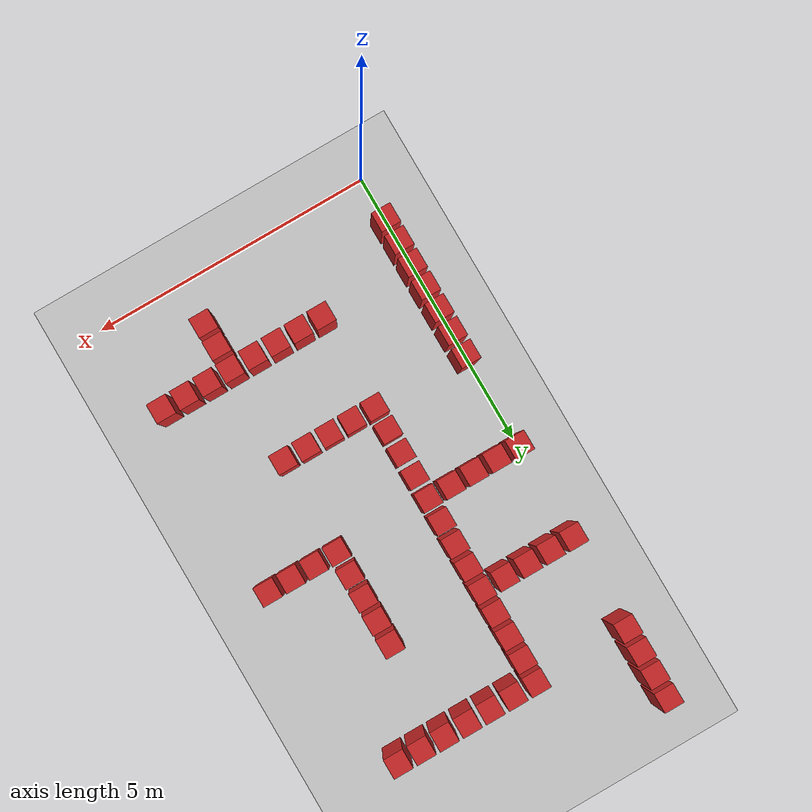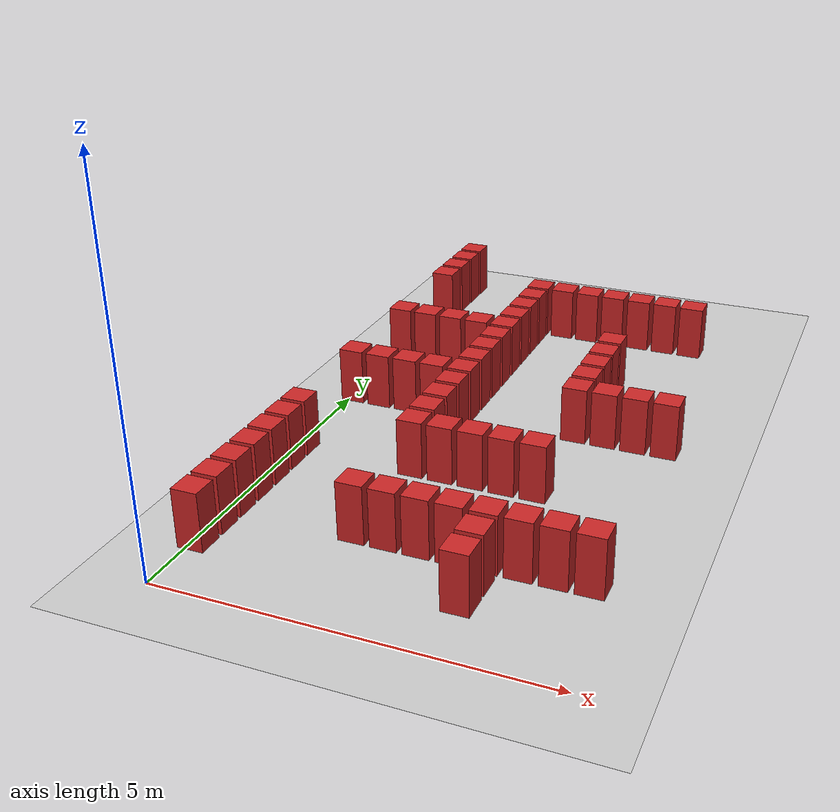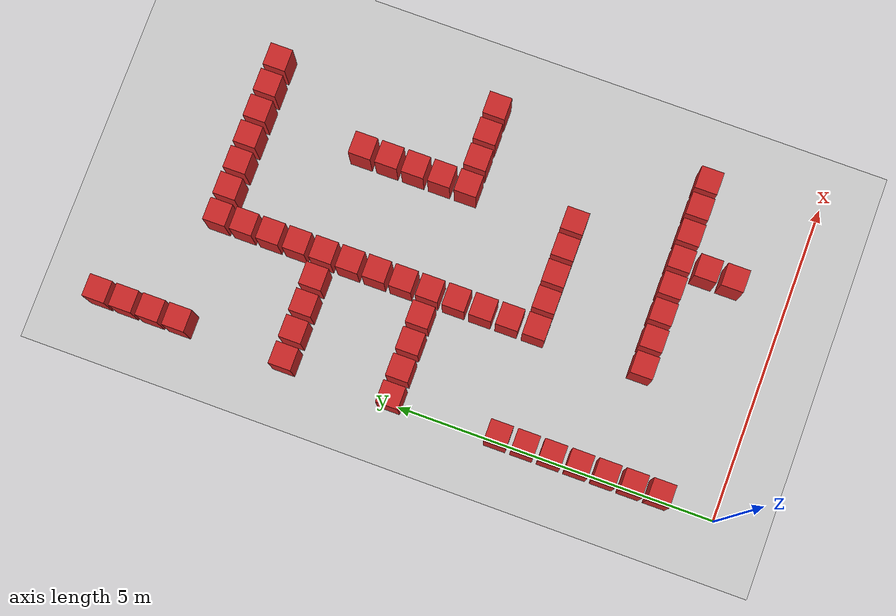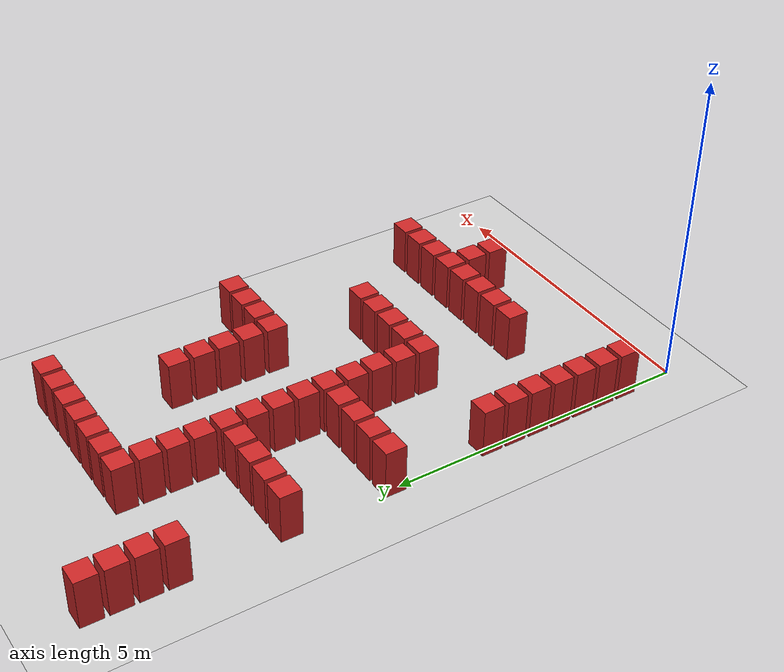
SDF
<sdf version="1.6">
 <world name="default">
  <model name="ground_plane">
   <static>1</static>
   <link name="link">
    <collision name="collision">
     <geometry><plane><normal>0 0 1</normal><size>100 100</size></plane></geometry>
     <surface><friction><ode><mu>100</mu><mu2>50</mu2></ode></friction></surface>
    </collision>
    <visual name="visual">
     <cast_shadows>0</cast_shadows>
     <geometry><plane><normal>0 0 1</normal><size>100 100</size></plane></geometry>
     <material>
      <script><uri>file://media/materials/scripts/gazebo.material</uri><name>Gazebo/Grey</name></script>
     </material>
    </visual>
   </link>
  </model>
  <model name="box_obstacle239">
   <static>0</static>
   <link name="link">
    <pose>0 0 0.1 0 -0 0</pose>
    <inertial>
     <mass>100</mass>
     <inertia>
      <ixx>0.166667</ixx>
      <ixy>0</ixy>
      <ixz>0</ixz>
      <iyy>0.166667</iyy>
      <iyz>0</iyz>
      <izz>0.166667</izz>
     </inertia>
    </inertial>
    <collision name="collision"><geometry><box><size>0.35 0.35 0.8</size></box></geometry></collision>
    <visual name="visual">
     <geometry><box><size>0.35 0.35 0.8</size></box></geometry>
     <material>
      <script><name>Gazebo/Red</name><uri>file://media/materials/scripts/gazebo.material</uri></script>
     </material>
    </visual>
   </link>
   <pose>0.079661 0.920061 0.300001 -1e-06 1.7e-05 0.000735</pose>
  </model>
  <model name="box_obstacle240">
   <static>0</static>
   <link name="link">
    <pose>0 0 0.1 0 -0 0</pose>
    <inertial>
     <mass>100</mass>
     <inertia>
      <ixx>0.166667</ixx>
      <ixy>0</ixy>
      <ixz>0</ixz>
      <iyy>0.166667</iyy>
      <iyz>0</iyz>
      <izz>0.166667</izz>
     </inertia>
    </inertial>
    <collision name="collision"><geometry><box><size>0.35 0.35 0.8</size></box></geometry></collision>
    <visual name="visual">
     <geometry><box><size>0.35 0.35 0.8</size></box></geometry>
     <material>
      <script><name>Gazebo/Red</name><uri>file://media/materials/scripts/gazebo.material</uri></script>
     </material>
    </visual>
   </link>
   <pose>0.079661 1.34006 0.300001 -1e-06 1.7e-05 0.000735</pose>
  </model>
  <model name="box_obstacle241">
   <static>0</static>
   <link name="link">
    <pose>0 0 0.1 0 -0 0</pose>
    <inertial>
     <mass>100</mass>
     <inertia>
      <ixx>0.166667</ixx>
      <ixy>0</ixy>
      <ixz>0</ixz>
      <iyy>0.166667</iyy>
      <iyz>0</iyz>
      <izz>0.166667</izz>
     </inertia>
    </inertial>
    <collision name="collision"><geometry><box><size>0.35 0.35 0.8</size></box></geometry></collision>
    <visual name="visual">
     <geometry><box><size>0.35 0.35 0.8</size></box></geometry>
     <material>
      <script><name>Gazebo/Red</name><uri>file://media/materials/scripts/gazebo.material</uri></script>
     </material>
    </visual>
   </link>
   <pose>0.079661 1.76006 0.300001 -1e-06 1.7e-05 0.000735</pose>
  </model>
  <model name="box_obstacle242">
   <static>0</static>
   <link name="link">
    <pose>0 0 0.1 0 -0 0</pose>
    <inertial>
     <mass>100</mass>
     <inertia>
      <ixx>0.166667</ixx>
      <ixy>0</ixy>
      <ixz>0</ixz>
      <iyy>0.166667</iyy>
      <iyz>0</iyz>
      <izz>0.166667</izz>
     </inertia>
    </inertial>
    <collision name="collision"><geometry><box><size>0.35 0.35 0.8</size></box></geometry></collision>
    <visual name="visual">
     <geometry><box><size>0.35 0.35 0.8</size></box></geometry>
     <material>
      <script><name>Gazebo/Red</name><uri>file://media/materials/scripts/gazebo.material</uri></script>
     </material>
    </visual>
   </link>
   <pose>0.079661 2.18006 0.300001 -1e-06 1.7e-05 0.000735</pose>
  </model>
  <model name="box_obstacle243">
   <static>0</static>
   <link name="link">
    <pose>0 0 0.1 0 -0 0</pose>
    <inertial>
     <mass>100</mass>
     <inertia>
      <ixx>0.166667</ixx>
      <ixy>0</ixy>
      <ixz>0</ixz>
      <iyy>0.166667</iyy>
      <iyz>0</iyz>
      <izz>0.166667</izz>
     </inertia>
    </inertial>
    <collision name="collision"><geometry><box><size>0.35 0.35 0.8</size></box></geometry></collision>
    <visual name="visual">
     <geometry><box><size>0.35 0.35 0.8</size></box></geometry>
     <material>
      <script><name>Gazebo/Red</name><uri>file://media/materials/scripts/gazebo.material</uri></script>
     </material>
    </visual>
   </link>
   <pose>0.079661 2.60006 0.300001 -1e-06 1.7e-05 0.000735</pose>
  </model>
  <model name="box_obstacle244">
   <static>0</static>
   <link name="link">
    <pose>0 0 0.1 0 -0 0</pose>
    <inertial>
     <mass>100</mass>
     <inertia>
      <ixx>0.166667</ixx>
      <ixy>0</ixy>
      <ixz>0</ixz>
      <iyy>0.166667</iyy>
      <iyz>0</iyz>
      <izz>0.166667</izz>
     </inertia>
    </inertial>
    <collision name="collision"><geometry><box><size>0.35 0.35 0.8</size></box></geometry></collision>
    <visual name="visual">
     <geometry><box><size>0.35 0.35 0.8</size></box></geometry>
     <material>
      <script><name>Gazebo/Red</name><uri>file://media/materials/scripts/gazebo.material</uri></script>
     </material>
    </visual>
   </link>
   <pose>0.079661 3.02006 0.300001 -1e-06 1.7e-05 0.000735</pose>
  </model>
  <model name="box_obstacle245">
   <static>0</static>
   <link name="link">
    <pose>0 0 0.1 0 -0 0</pose>
    <inertial>
     <mass>100</mass>
     <inertia>
      <ixx>0.166667</ixx>
      <ixy>0</ixy>
      <ixz>0</ixz>
      <iyy>0.166667</iyy>
      <iyz>0</iyz>
      <izz>0.166667</izz>
     </inertia>
    </inertial>
    <collision name="collision"><geometry><box><size>0.35 0.35 0.8</size></box></geometry></collision>
    <visual name="visual">
     <geometry><box><size>0.35 0.35 0.8</size></box></geometry>
     <material>
      <script><name>Gazebo/Red</name><uri>file://media/materials/scripts/gazebo.material</uri></script>
     </material>
    </visual>
   </link>
   <pose>0.079661 3.44006 0.300001 -1e-06 1.7e-05 0.000735</pose>
  </model>
  <model name="box_obstacle246">
   <static>0</static>
   <link name="link">
    <pose>0 0 0.1 0 -0 0</pose>
    <inertial>
     <mass>100</mass>
     <inertia>
      <ixx>0.166667</ixx>
      <ixy>0</ixy>
      <ixz>0</ixz>
      <iyy>0.166667</iyy>
      <iyz>0</iyz>
      <izz>0.166667</izz>
     </inertia>
    </inertial>
    <collision name="collision"><geometry><box><size>0.35 0.35 0.8</size></box></geometry></collision>
    <visual name="visual">
     <geometry><box><size>0.35 0.35 0.8</size></box></geometry>
     <material>
      <script><name>Gazebo/Red</name><uri>file://media/materials/scripts/gazebo.material</uri></script>
     </material>
    </visual>
   </link>
   <pose>0.079661 5.12006 0.300001 -1e-06 1.7e-05 0.000735</pose>
  </model>
  <model name="box_obstacle247">
   <static>0</static>
   <link name="link">
    <pose>0 0 0.1 0 -0 0</pose>
    <inertial>
     <mass>100</mass>
     <inertia>
      <ixx>0.166667</ixx>
      <ixy>0</ixy>
      <ixz>0</ixz>
      <iyy>0.166667</iyy>
      <iyz>0</iyz>
      <izz>0.166667</izz>
     </inertia>
    </inertial>
    <collision name="collision"><geometry><box><size>0.35 0.35 0.8</size></box></geometry></collision>
    <visual name="visual">
     <geometry><box><size>0.35 0.35 0.8</size></box></geometry>
     <material>
      <script><name>Gazebo/Red</name><uri>file://media/materials/scripts/gazebo.material</uri></script>
     </material>
    </visual>
   </link>
   <pose>0.079661 6.80006 0.300001 -1e-06 1.7e-05 0.000735</pose>
  </model>
  <model name="box_obstacle248">
   <static>0</static>
   <link name="link">
    <pose>0 0 0.1 0 -0 0</pose>
    <inertial>
     <mass>100</mass>
     <inertia>
      <ixx>0.166667</ixx>
      <ixy>0</ixy>
      <ixz>0</ixz>
      <iyy>0.166667</iyy>
      <iyz>0</iyz>
      <izz>0.166667</izz>
     </inertia>
    </inertial>
    <collision name="collision"><geometry><box><size>0.35 0.35 0.8</size></box></geometry></collision>
    <visual name="visual">
     <geometry><box><size>0.35 0.35 0.8</size></box></geometry>
     <material>
      <script><name>Gazebo/Red</name><uri>file://media/materials/scripts/gazebo.material</uri></script>
     </material>
    </visual>
   </link>
   <pose>0.079661 8.48006 0.300001 -1e-06 1.7e-05 0.000735</pose>
  </model>
  <model name="box_obstacle249">
   <static>0</static>
   <link name="link">
    <pose>0 0 0.1 0 -0 0</pose>
    <inertial>
     <mass>100</mass>
     <inertia>
      <ixx>0.166667</ixx>
      <ixy>0</ixy>
      <ixz>0</ixz>
      <iyy>0.166667</iyy>
      <iyz>0</iyz>
      <izz>0.166667</izz>
     </inertia>
    </inertial>
    <collision name="collision"><geometry><box><size>0.35 0.35 0.8</size></box></geometry></collision>
    <visual name="visual">
     <geometry><box><size>0.35 0.35 0.8</size></box></geometry>
     <material>
      <script><name>Gazebo/Red</name><uri>file://media/materials/scripts/gazebo.material</uri></script>
     </material>
    </visual>
   </link>
   <pose>0.079661 8.90006 0.300001 -1e-06 1.7e-05 0.000735</pose>
  </model>
  <model name="box_obstacle250">
   <static>0</static>
   <link name="link">
    <pose>0 0 0.1 0 -0 0</pose>
    <inertial>
     <mass>100</mass>
     <inertia>
      <ixx>0.166667</ixx>
      <ixy>0</ixy>
      <ixz>0</ixz>
      <iyy>0.166667</iyy>
      <iyz>0</iyz>
      <izz>0.166667</izz>
     </inertia>
    </inertial>
    <collision name="collision"><geometry><box><size>0.35 0.35 0.8</size></box></geometry></collision>
    <visual name="visual">
     <geometry><box><size>0.35 0.35 0.8</size></box></geometry>
     <material>
      <script><name>Gazebo/Red</name><uri>file://media/materials/scripts/gazebo.material</uri></script>
     </material>
    </visual>
   </link>
   <pose>0.079661 9.32006 0.300001 -1e-06 1.7e-05 0.000735</pose>
  </model>
  <model name="box_obstacle251">
   <static>0</static>
   <link name="link">
    <pose>0 0 0.1 0 -0 0</pose>
    <inertial>
     <mass>100</mass>
     <inertia>
      <ixx>0.166667</ixx>
      <ixy>0</ixy>
      <ixz>0</ixz>
      <iyy>0.166667</iyy>
      <iyz>0</iyz>
      <izz>0.166667</izz>
     </inertia>
    </inertial>
    <collision name="collision"><geometry><box><size>0.35 0.35 0.8</size></box></geometry></collision>
    <visual name="visual">
     <geometry><box><size>0.35 0.35 0.8</size></box></geometry>
     <material>
      <script><name>Gazebo/Red</name><uri>file://media/materials/scripts/gazebo.material</uri></script>
     </material>
    </visual>
   </link>
   <pose>0.079661 9.74006 0.300001 -1e-06 1.7e-05 0.000735</pose>
  </model>
  <model name="box_obstacle256">
   <static>0</static>
   <link name="link">
    <pose>0 0 0.1 0 -0 0</pose>
    <inertial>
     <mass>100</mass>
     <inertia>
      <ixx>0.166667</ixx>
      <ixy>0</ixy>
      <ixz>0</ixz>
      <iyy>0.166667</iyy>
      <iyz>0</iyz>
      <izz>0.166667</izz>
     </inertia>
    </inertial>
    <collision name="collision"><geometry><box><size>0.35 0.35 0.8</size></box></geometry></collision>
    <visual name="visual">
     <geometry><box><size>0.35 0.35 0.8</size></box></geometry>
     <material>
      <script><name>Gazebo/Red</name><uri>file://media/materials/scripts/gazebo.material</uri></script>
     </material>
    </visual>
   </link>
   <pose>0.499661 5.12006 0.300001 -1e-06 1.7e-05 0.000735</pose>
  </model>
  <model name="box_obstacle257">
   <static>0</static>
   <link name="link">
    <pose>0 0 0.1 0 -0 0</pose>
    <inertial>
     <mass>100</mass>
     <inertia>
      <ixx>0.166667</ixx>
      <ixy>0</ixy>
      <ixz>0</ixz>
      <iyy>0.166667</iyy>
      <iyz>0</iyz>
      <izz>0.166667</izz>
     </inertia>
    </inertial>
    <collision name="collision"><geometry><box><size>0.35 0.35 0.8</size></box></geometry></collision>
    <visual name="visual">
     <geometry><box><size>0.35 0.35 0.8</size></box></geometry>
     <material>
      <script><name>Gazebo/Red</name><uri>file://media/materials/scripts/gazebo.material</uri></script>
     </material>
    </visual>
   </link>
   <pose>0.499661 6.80006 0.300001 -1e-06 1.7e-05 0.000735</pose>
  </model>
  <model name="box_obstacle262">
   <static>0</static>
   <link name="link">
    <pose>0 0 0.1 0 -0 0</pose>
    <inertial>
     <mass>100</mass>
     <inertia>
      <ixx>0.166667</ixx>
      <ixy>0</ixy>
      <ixz>0</ixz>
      <iyy>0.166667</iyy>
      <iyz>0</iyz>
      <izz>0.166667</izz>
     </inertia>
    </inertial>
    <collision name="collision"><geometry><box><size>0.35 0.35 0.8</size></box></geometry></collision>
    <visual name="visual">
     <geometry><box><size>0.35 0.35 0.8</size></box></geometry>
     <material>
      <script><name>Gazebo/Red</name><uri>file://media/materials/scripts/gazebo.material</uri></script>
     </material>
    </visual>
   </link>
   <pose>0.919661 5.12006 0.300001 -1e-06 1.7e-05 0.000735</pose>
  </model>
  <model name="box_obstacle263">
   <static>0</static>
   <link name="link">
    <pose>0 0 0.1 0 -0 0</pose>
    <inertial>
     <mass>100</mass>
     <inertia>
      <ixx>0.166667</ixx>
      <ixy>0</ixy>
      <ixz>0</ixz>
      <iyy>0.166667</iyy>
      <iyz>0</iyz>
      <izz>0.166667</izz>
     </inertia>
    </inertial>
    <collision name="collision"><geometry><box><size>0.35 0.35 0.8</size></box></geometry></collision>
    <visual name="visual">
     <geometry><box><size>0.35 0.35 0.8</size></box></geometry>
     <material>
      <script><name>Gazebo/Red</name><uri>file://media/materials/scripts/gazebo.material</uri></script>
     </material>
    </visual>
   </link>
   <pose>0.919661 6.80006 0.300001 -1e-06 1.7e-05 0.000735</pose>
  </model>
  <model name="box_obstacle268">
   <static>0</static>
   <link name="link">
    <pose>0 0 0.1 0 -0 0</pose>
    <inertial>
     <mass>100</mass>
     <inertia>
      <ixx>0.166667</ixx>
      <ixy>0</ixy>
      <ixz>0</ixz>
      <iyy>0.166667</iyy>
      <iyz>0</iyz>
      <izz>0.166667</izz>
     </inertia>
    </inertial>
    <collision name="collision"><geometry><box><size>0.35 0.35 0.8</size></box></geometry></collision>
    <visual name="visual">
     <geometry><box><size>0.35 0.35 0.8</size></box></geometry>
     <material>
      <script><name>Gazebo/Red</name><uri>file://media/materials/scripts/gazebo.material</uri></script>
     </material>
    </visual>
   </link>
   <pose>1.33966 5.12006 0.300001 -1e-06 1.7e-05 0.000735</pose>
  </model>
  <model name="box_obstacle269">
   <static>0</static>
   <link name="link">
    <pose>0 0 0.1 0 -0 0</pose>
    <inertial>
     <mass>100</mass>
     <inertia>
      <ixx>0.166667</ixx>
      <ixy>0</ixy>
      <ixz>0</ixz>
      <iyy>0.166667</iyy>
      <iyz>0</iyz>
      <izz>0.166667</izz>
     </inertia>
    </inertial>
    <collision name="collision"><geometry><box><size>0.35 0.35 0.8</size></box></geometry></collision>
    <visual name="visual">
     <geometry><box><size>0.35 0.35 0.8</size></box></geometry>
     <material>
      <script><name>Gazebo/Red</name><uri>file://media/materials/scripts/gazebo.material</uri></script>
     </material>
    </visual>
   </link>
   <pose>1.33966 6.80006 0.300001 -1e-06 1.7e-05 0.000735</pose>
  </model>
  <model name="box_obstacle279">
   <static>0</static>
   <link name="link">
    <pose>0 0 0.1 0 -0 0</pose>
    <inertial>
     <mass>100</mass>
     <inertia>
      <ixx>0.166667</ixx>
      <ixy>0</ixy>
      <ixz>0</ixz>
      <iyy>0.166667</iyy>
      <iyz>0</iyz>
      <izz>0.166667</izz>
     </inertia>
    </inertial>
    <collision name="collision"><geometry><box><size>0.35 0.35 0.8</size></box></geometry></collision>
    <visual name="visual">
     <geometry><box><size>0.35 0.35 0.8</size></box></geometry>
     <material>
      <script><name>Gazebo/Red</name><uri>file://media/materials/scripts/gazebo.material</uri></script>
     </material>
    </visual>
   </link>
   <pose>1.75966 1.76006 0.300001 -1e-06 1.7e-05 0.000735</pose>
  </model>
  <model name="box_obstacle280">
   <static>0</static>
   <link name="link">
    <pose>0 0 0.1 0 -0 0</pose>
    <inertial>
     <mass>100</mass>
     <inertia>
      <ixx>0.166667</ixx>
      <ixy>0</ixy>
      <ixz>0</ixz>
      <iyy>0.166667</iyy>
      <iyz>0</iyz>
      <izz>0.166667</izz>
     </inertia>
    </inertial>
    <collision name="collision"><geometry><box><size>0.35 0.35 0.8</size></box></geometry></collision>
    <visual name="visual">
     <geometry><box><size>0.35 0.35 0.8</size></box></geometry>
     <material>
      <script><name>Gazebo/Red</name><uri>file://media/materials/scripts/gazebo.material</uri></script>
     </material>
    </visual>
   </link>
   <pose>1.75966 3.44006 0.300001 -1e-06 1.7e-05 0.000735</pose>
  </model>
  <model name="box_obstacle281">
   <static>0</static>
   <link name="link">
    <pose>0 0 0.1 0 -0 0</pose>
    <inertial>
     <mass>100</mass>
     <inertia>
      <ixx>0.166667</ixx>
      <ixy>0</ixy>
      <ixz>0</ixz>
      <iyy>0.166667</iyy>
      <iyz>0</iyz>
      <izz>0.166667</izz>
     </inertia>
    </inertial>
    <collision name="collision"><geometry><box><size>0.35 0.35 0.8</size></box></geometry></collision>
    <visual name="visual">
     <geometry><box><size>0.35 0.35 0.8</size></box></geometry>
     <material>
      <script><name>Gazebo/Red</name><uri>file://media/materials/scripts/gazebo.material</uri></script>
     </material>
    </visual>
   </link>
   <pose>1.75966 3.86006 0.300001 -1e-06 1.7e-05 0.000735</pose>
  </model>
  <model name="box_obstacle282">
   <static>0</static>
   <link name="link">
    <pose>0 0 0.1 0 -0 0</pose>
    <inertial>
     <mass>100</mass>
     <inertia>
      <ixx>0.166667</ixx>
      <ixy>0</ixy>
      <ixz>0</ixz>
      <iyy>0.166667</iyy>
      <iyz>0</iyz>
      <izz>0.166667</izz>
     </inertia>
    </inertial>
    <collision name="collision"><geometry><box><size>0.35 0.35 0.8</size></box></geometry></collision>
    <visual name="visual">
     <geometry><box><size>0.35 0.35 0.8</size></box></geometry>
     <material>
      <script><name>Gazebo/Red</name><uri>file://media/materials/scripts/gazebo.material</uri></script>
     </material>
    </visual>
   </link>
   <pose>1.75966 4.28006 0.300001 -1e-06 1.7e-05 0.000735</pose>
  </model>
  <model name="box_obstacle283">
   <static>0</static>
   <link name="link">
    <pose>0 0 0.1 0 -0 0</pose>
    <inertial>
     <mass>100</mass>
     <inertia>
      <ixx>0.166667</ixx>
      <ixy>0</ixy>
      <ixz>0</ixz>
      <iyy>0.166667</iyy>
      <iyz>0</iyz>
      <izz>0.166667</izz>
     </inertia>
    </inertial>
    <collision name="collision"><geometry><box><size>0.35 0.35 0.8</size></box></geometry></collision>
    <visual name="visual">
     <geometry><box><size>0.35 0.35 0.8</size></box></geometry>
     <material>
      <script><name>Gazebo/Red</name><uri>file://media/materials/scripts/gazebo.material</uri></script>
     </material>
    </visual>
   </link>
   <pose>1.75966 4.70006 0.300001 -1e-06 1.7e-05 0.000735</pose>
  </model>
  <model name="box_obstacle284">
   <static>0</static>
   <link name="link">
    <pose>0 0 0.1 0 -0 0</pose>
    <inertial>
     <mass>100</mass>
     <inertia>
      <ixx>0.166667</ixx>
      <ixy>0</ixy>
      <ixz>0</ixz>
      <iyy>0.166667</iyy>
      <iyz>0</iyz>
      <izz>0.166667</izz>
     </inertia>
    </inertial>
    <collision name="collision"><geometry><box><size>0.35 0.35 0.8</size></box></geometry></collision>
    <visual name="visual">
     <geometry><box><size>0.35 0.35 0.8</size></box></geometry>
     <material>
      <script><name>Gazebo/Red</name><uri>file://media/materials/scripts/gazebo.material</uri></script>
     </material>
    </visual>
   </link>
   <pose>1.75966 5.12006 0.300001 -1e-06 1.7e-05 0.000735</pose>
  </model>
  <model name="box_obstacle285">
   <static>0</static>
   <link name="link">
    <pose>0 0 0.1 0 -0 0</pose>
    <inertial>
     <mass>100</mass>
     <inertia>
      <ixx>0.166667</ixx>
      <ixy>0</ixy>
      <ixz>0</ixz>
      <iyy>0.166667</iyy>
      <iyz>0</iyz>
      <izz>0.166667</izz>
     </inertia>
    </inertial>
    <collision name="collision"><geometry><box><size>0.35 0.35 0.8</size></box></geometry></collision>
    <visual name="visual">
     <geometry><box><size>0.35 0.35 0.8</size></box></geometry>
     <material>
      <script><name>Gazebo/Red</name><uri>file://media/materials/scripts/gazebo.material</uri></script>
     </material>
    </visual>
   </link>
   <pose>1.75966 5.54006 0.300001 -1e-06 1.7e-05 0.000735</pose>
  </model>
  <model name="box_obstacle286">
   <static>0</static>
   <link name="link">
    <pose>0 0 0.1 0 -0 0</pose>
    <inertial>
     <mass>100</mass>
     <inertia>
      <ixx>0.166667</ixx>
      <ixy>0</ixy>
      <ixz>0</ixz>
      <iyy>0.166667</iyy>
      <iyz>0</iyz>
      <izz>0.166667</izz>
     </inertia>
    </inertial>
    <collision name="collision"><geometry><box><size>0.35 0.35 0.8</size></box></geometry></collision>
    <visual name="visual">
     <geometry><box><size>0.35 0.35 0.8</size></box></geometry>
     <material>
      <script><name>Gazebo/Red</name><uri>file://media/materials/scripts/gazebo.material</uri></script>
     </material>
    </visual>
   </link>
   <pose>1.75966 5.96006 0.300001 -1e-06 1.7e-05 0.000735</pose>
  </model>
  <model name="box_obstacle287">
   <static>0</static>
   <link name="link">
    <pose>0 0 0.1 0 -0 0</pose>
    <inertial>
     <mass>100</mass>
     <inertia>
      <ixx>0.166667</ixx>
      <ixy>0</ixy>
      <ixz>0</ixz>
      <iyy>0.166667</iyy>
      <iyz>0</iyz>
      <izz>0.166667</izz>
     </inertia>
    </inertial>
    <collision name="collision"><geometry><box><size>0.35 0.35 0.8</size></box></geometry></collision>
    <visual name="visual">
     <geometry><box><size>0.35 0.35 0.8</size></box></geometry>
     <material>
      <script><name>Gazebo/Red</name><uri>file://media/materials/scripts/gazebo.material</uri></script>
     </material>
    </visual>
   </link>
   <pose>1.75966 6.38006 0.300001 -1e-06 1.7e-05 0.000735</pose>
  </model>
  <model name="box_obstacle288">
   <static>0</static>
   <link name="link">
    <pose>0 0 0.1 0 -0 0</pose>
    <inertial>
     <mass>100</mass>
     <inertia>
      <ixx>0.166667</ixx>
      <ixy>0</ixy>
      <ixz>0</ixz>
      <iyy>0.166667</iyy>
      <iyz>0</iyz>
      <izz>0.166667</izz>
     </inertia>
    </inertial>
    <collision name="collision"><geometry><box><size>0.35 0.35 0.8</size></box></geometry></collision>
    <visual name="visual">
     <geometry><box><size>0.35 0.35 0.8</size></box></geometry>
     <material>
      <script><name>Gazebo/Red</name><uri>file://media/materials/scripts/gazebo.material</uri></script>
     </material>
    </visual>
   </link>
   <pose>1.75966 6.80006 0.300001 -1e-06 1.7e-05 0.000735</pose>
  </model>
  <model name="box_obstacle289">
   <static>0</static>
   <link name="link">
    <pose>0 0 0.1 0 -0 0</pose>
    <inertial>
     <mass>100</mass>
     <inertia>
      <ixx>0.166667</ixx>
      <ixy>0</ixy>
      <ixz>0</ixz>
      <iyy>0.166667</iyy>
      <iyz>0</iyz>
      <izz>0.166667</izz>
     </inertia>
    </inertial>
    <collision name="collision"><geometry><box><size>0.35 0.35 0.8</size></box></geometry></collision>
    <visual name="visual">
     <geometry><box><size>0.35 0.35 0.8</size></box></geometry>
     <material>
      <script><name>Gazebo/Red</name><uri>file://media/materials/scripts/gazebo.material</uri></script>
     </material>
    </visual>
   </link>
   <pose>1.75966 7.22006 0.300001 -1e-06 1.7e-05 0.000735</pose>
  </model>
  <model name="box_obstacle290">
   <static>0</static>
   <link name="link">
    <pose>0 0 0.1 0 -0 0</pose>
    <inertial>
     <mass>100</mass>
     <inertia>
      <ixx>0.166667</ixx>
      <ixy>0</ixy>
      <ixz>0</ixz>
      <iyy>0.166667</iyy>
      <iyz>0</iyz>
      <izz>0.166667</izz>
     </inertia>
    </inertial>
    <collision name="collision"><geometry><box><size>0.35 0.35 0.8</size></box></geometry></collision>
    <visual name="visual">
     <geometry><box><size>0.35 0.35 0.8</size></box></geometry>
     <material>
      <script><name>Gazebo/Red</name><uri>file://media/materials/scripts/gazebo.material</uri></script>
     </material>
    </visual>
   </link>
   <pose>1.75966 7.64006 0.300001 -1e-06 1.7e-05 0.000735</pose>
  </model>
  <model name="box_obstacle291">
   <static>0</static>
   <link name="link">
    <pose>0 0 0.1 0 -0 0</pose>
    <inertial>
     <mass>100</mass>
     <inertia>
      <ixx>0.166667</ixx>
      <ixy>0</ixy>
      <ixz>0</ixz>
      <iyy>0.166667</iyy>
      <iyz>0</iyz>
      <izz>0.166667</izz>
     </inertia>
    </inertial>
    <collision name="collision"><geometry><box><size>0.35 0.35 0.8</size></box></geometry></collision>
    <visual name="visual">
     <geometry><box><size>0.35 0.35 0.8</size></box></geometry>
     <material>
      <script><name>Gazebo/Red</name><uri>file://media/materials/scripts/gazebo.material</uri></script>
     </material>
    </visual>
   </link>
   <pose>1.75966 8.06006 0.300001 -1e-06 1.7e-05 0.000735</pose>
  </model>
  <model name="box_obstacle292">
   <static>0</static>
   <link name="link">
    <pose>0 0 0.1 0 -0 0</pose>
    <inertial>
     <mass>100</mass>
     <inertia>
      <ixx>0.166667</ixx>
      <ixy>0</ixy>
      <ixz>0</ixz>
      <iyy>0.166667</iyy>
      <iyz>0</iyz>
      <izz>0.166667</izz>
     </inertia>
    </inertial>
    <collision name="collision"><geometry><box><size>0.35 0.35 0.8</size></box></geometry></collision>
    <visual name="visual">
     <geometry><box><size>0.35 0.35 0.8</size></box></geometry>
     <material>
      <script><name>Gazebo/Red</name><uri>file://media/materials/scripts/gazebo.material</uri></script>
     </material>
    </visual>
   </link>
   <pose>1.75966 8.48006 0.300001 -1e-06 1.7e-05 0.000735</pose>
  </model>
  <model name="box_obstacle297">
   <static>0</static>
   <link name="link">
    <pose>0 0 0.1 0 -0 0</pose>
    <inertial>
     <mass>100</mass>
     <inertia>
      <ixx>0.166667</ixx>
      <ixy>0</ixy>
      <ixz>0</ixz>
      <iyy>0.166667</iyy>
      <iyz>0</iyz>
      <izz>0.166667</izz>
     </inertia>
    </inertial>
    <collision name="collision"><geometry><box><size>0.35 0.35 0.8</size></box></geometry></collision>
    <visual name="visual">
     <geometry><box><size>0.35 0.35 0.8</size></box></geometry>
     <material>
      <script><name>Gazebo/Red</name><uri>file://media/materials/scripts/gazebo.material</uri></script>
     </material>
    </visual>
   </link>
   <pose>2.17966 1.76006 0.300001 -1e-06 1.7e-05 0.000735</pose>
  </model>
  <model name="box_obstacle298">
   <static>0</static>
   <link name="link">
    <pose>0 0 0.1 0 -0 0</pose>
    <inertial>
     <mass>100</mass>
     <inertia>
      <ixx>0.166667</ixx>
      <ixy>0</ixy>
      <ixz>0</ixz>
      <iyy>0.166667</iyy>
      <iyz>0</iyz>
      <izz>0.166667</izz>
     </inertia>
    </inertial>
    <collision name="collision"><geometry><box><size>0.35 0.35 0.8</size></box></geometry></collision>
    <visual name="visual">
     <geometry><box><size>0.35 0.35 0.8</size></box></geometry>
     <material>
      <script><name>Gazebo/Red</name><uri>file://media/materials/scripts/gazebo.material</uri></script>
     </material>
    </visual>
   </link>
   <pose>2.17966 3.44006 0.300001 -1e-06 1.7e-05 0.000735</pose>
  </model>
  <model name="box_obstacle299">
   <static>0</static>
   <link name="link">
    <pose>0 0 0.1 0 -0 0</pose>
    <inertial>
     <mass>100</mass>
     <inertia>
      <ixx>0.166667</ixx>
      <ixy>0</ixy>
      <ixz>0</ixz>
      <iyy>0.166667</iyy>
      <iyz>0</iyz>
      <izz>0.166667</izz>
     </inertia>
    </inertial>
    <collision name="collision"><geometry><box><size>0.35 0.35 0.8</size></box></geometry></collision>
    <visual name="visual">
     <geometry><box><size>0.35 0.35 0.8</size></box></geometry>
     <material>
      <script><name>Gazebo/Red</name><uri>file://media/materials/scripts/gazebo.material</uri></script>
     </material>
    </visual>
   </link>
   <pose>2.17966 8.48006 0.300001 -1e-06 1.7e-05 0.000735</pose>
  </model>
  <model name="box_obstacle304">
   <static>0</static>
   <link name="link">
    <pose>0 0 0.1 0 -0 0</pose>
    <inertial>
     <mass>100</mass>
     <inertia>
      <ixx>0.166667</ixx>
      <ixy>0</ixy>
      <ixz>0</ixz>
      <iyy>0.166667</iyy>
      <iyz>0</iyz>
      <izz>0.166667</izz>
     </inertia>
    </inertial>
    <collision name="collision"><geometry><box><size>0.35 0.35 0.8</size></box></geometry></collision>
    <visual name="visual">
     <geometry><box><size>0.35 0.35 0.8</size></box></geometry>
     <material>
      <script><name>Gazebo/Red</name><uri>file://media/materials/scripts/gazebo.material</uri></script>
     </material>
    </visual>
   </link>
   <pose>2.59966 1.76006 0.300001 -1e-06 1.7e-05 0.000735</pose>
  </model>
  <model name="box_obstacle305">
   <static>0</static>
   <link name="link">
    <pose>0 0 0.1 0 -0 0</pose>
    <inertial>
     <mass>100</mass>
     <inertia>
      <ixx>0.166667</ixx>
      <ixy>0</ixy>
      <ixz>0</ixz>
      <iyy>0.166667</iyy>
      <iyz>0</iyz>
      <izz>0.166667</izz>
     </inertia>
    </inertial>
    <collision name="collision"><geometry><box><size>0.35 0.35 0.8</size></box></geometry></collision>
    <visual name="visual">
     <geometry><box><size>0.35 0.35 0.8</size></box></geometry>
     <material>
      <script><name>Gazebo/Red</name><uri>file://media/materials/scripts/gazebo.material</uri></script>
     </material>
    </visual>
   </link>
   <pose>2.59966 3.44006 0.300001 -1e-06 1.7e-05 0.000735</pose>
  </model>
  <model name="box_obstacle306">
   <static>0</static>
   <link name="link">
    <pose>0 0 0.1 0 -0 0</pose>
    <inertial>
     <mass>100</mass>
     <inertia>
      <ixx>0.166667</ixx>
      <ixy>0</ixy>
      <ixz>0</ixz>
      <iyy>0.166667</iyy>
      <iyz>0</iyz>
      <izz>0.166667</izz>
     </inertia>
    </inertial>
    <collision name="collision"><geometry><box><size>0.35 0.35 0.8</size></box></geometry></collision>
    <visual name="visual">
     <geometry><box><size>0.35 0.35 0.8</size></box></geometry>
     <material>
      <script><name>Gazebo/Red</name><uri>file://media/materials/scripts/gazebo.material</uri></script>
     </material>
    </visual>
   </link>
   <pose>2.59966 8.48006 0.300001 -1e-06 1.7e-05 0.000735</pose>
  </model>
  <model name="box_obstacle311">
   <static>0</static>
   <link name="link">
    <pose>0 0 0.1 0 -0 0</pose>
    <inertial>
     <mass>100</mass>
     <inertia>
      <ixx>0.166667</ixx>
      <ixy>0</ixy>
      <ixz>0</ixz>
      <iyy>0.166667</iyy>
      <iyz>0</iyz>
      <izz>0.166667</izz>
     </inertia>
    </inertial>
    <collision name="collision"><geometry><box><size>0.35 0.35 0.8</size></box></geometry></collision>
    <visual name="visual">
     <geometry><box><size>0.35 0.35 0.8</size></box></geometry>
     <material>
      <script><name>Gazebo/Red</name><uri>file://media/materials/scripts/gazebo.material</uri></script>
     </material>
    </visual>
   </link>
   <pose>3.01966 1.76006 0.300001 -1e-06 1.7e-05 0.000735</pose>
  </model>
  <model name="box_obstacle312">
   <static>0</static>
   <link name="link">
    <pose>0 0 0.1 0 -0 0</pose>
    <inertial>
     <mass>100</mass>
     <inertia>
      <ixx>0.166667</ixx>
      <ixy>0</ixy>
      <ixz>0</ixz>
      <iyy>0.166667</iyy>
      <iyz>0</iyz>
      <izz>0.166667</izz>
     </inertia>
    </inertial>
    <collision name="collision"><geometry><box><size>0.35 0.35 0.8</size></box></geometry></collision>
    <visual name="visual">
     <geometry><box><size>0.35 0.35 0.8</size></box></geometry>
     <material>
      <script><name>Gazebo/Red</name><uri>file://media/materials/scripts/gazebo.material</uri></script>
     </material>
    </visual>
   </link>
   <pose>3.01966 3.44006 0.300001 -1e-06 1.7e-05 0.000735</pose>
  </model>
  <model name="box_obstacle313">
   <static>0</static>
   <link name="link">
    <pose>0 0 0.1 0 -0 0</pose>
    <inertial>
     <mass>100</mass>
     <inertia>
      <ixx>0.166667</ixx>
      <ixy>0</ixy>
      <ixz>0</ixz>
      <iyy>0.166667</iyy>
      <iyz>0</iyz>
      <izz>0.166667</izz>
     </inertia>
    </inertial>
    <collision name="collision"><geometry><box><size>0.35 0.35 0.8</size></box></geometry></collision>
    <visual name="visual">
     <geometry><box><size>0.35 0.35 0.8</size></box></geometry>
     <material>
      <script><name>Gazebo/Red</name><uri>file://media/materials/scripts/gazebo.material</uri></script>
     </material>
    </visual>
   </link>
   <pose>3.01966 8.48006 0.300001 -1e-06 1.7e-05 0.000735</pose>
  </model>
  <model name="box_obstacle330">
   <static>0</static>
   <link name="link">
    <pose>0 0 0.1 0 -0 0</pose>
    <inertial>
     <mass>100</mass>
     <inertia>
      <ixx>0.166667</ixx>
      <ixy>0</ixy>
      <ixz>0</ixz>
      <iyy>0.166667</iyy>
      <iyz>0</iyz>
      <izz>0.166667</izz>
     </inertia>
    </inertial>
    <collision name="collision"><geometry><box><size>0.35 0.35 0.8</size></box></geometry></collision>
    <visual name="visual">
     <geometry><box><size>0.35 0.35 0.8</size></box></geometry>
     <material>
      <script><name>Gazebo/Red</name><uri>file://media/materials/scripts/gazebo.material</uri></script>
     </material>
    </visual>
   </link>
   <pose>3.43966 0.920061 0.300001 -1e-06 1.7e-05 0.000735</pose>
  </model>
  <model name="box_obstacle331">
   <static>0</static>
   <link name="link">
    <pose>0 0 0.1 0 -0 0</pose>
    <inertial>
     <mass>100</mass>
     <inertia>
      <ixx>0.166667</ixx>
      <ixy>0</ixy>
      <ixz>0</ixz>
      <iyy>0.166667</iyy>
      <iyz>0</iyz>
      <izz>0.166667</izz>
     </inertia>
    </inertial>
    <collision name="collision"><geometry><box><size>0.35 0.35 0.8</size></box></geometry></collision>
    <visual name="visual">
     <geometry><box><size>0.35 0.35 0.8</size></box></geometry>
     <material>
      <script><name>Gazebo/Red</name><uri>file://media/materials/scripts/gazebo.material</uri></script>
     </material>
    </visual>
   </link>
   <pose>3.43966 1.34006 0.300001 -1e-06 1.7e-05 0.000735</pose>
  </model>
  <model name="box_obstacle332">
   <static>0</static>
   <link name="link">
    <pose>0 0 0.1 0 -0 0</pose>
    <inertial>
     <mass>100</mass>
     <inertia>
      <ixx>0.166667</ixx>
      <ixy>0</ixy>
      <ixz>0</ixz>
      <iyy>0.166667</iyy>
      <iyz>0</iyz>
      <izz>0.166667</izz>
     </inertia>
    </inertial>
    <collision name="collision"><geometry><box><size>0.35 0.35 0.8</size></box></geometry></collision>
    <visual name="visual">
     <geometry><box><size>0.35 0.35 0.8</size></box></geometry>
     <material>
      <script><name>Gazebo/Red</name><uri>file://media/materials/scripts/gazebo.material</uri></script>
     </material>
    </visual>
   </link>
   <pose>3.43966 1.76006 0.300001 -1e-06 1.7e-05 0.000735</pose>
  </model>
  <model name="box_obstacle333">
   <static>0</static>
   <link name="link">
    <pose>0 0 0.1 0 -0 0</pose>
    <inertial>
     <mass>100</mass>
     <inertia>
      <ixx>0.166667</ixx>
      <ixy>0</ixy>
      <ixz>0</ixz>
      <iyy>0.166667</iyy>
      <iyz>0</iyz>
      <izz>0.166667</izz>
     </inertia>
    </inertial>
    <collision name="collision"><geometry><box><size>0.35 0.35 0.8</size></box></geometry></collision>
    <visual name="visual">
     <geometry><box><size>0.35 0.35 0.8</size></box></geometry>
     <material>
      <script><name>Gazebo/Red</name><uri>file://media/materials/scripts/gazebo.material</uri></script>
     </material>
    </visual>
   </link>
   <pose>3.43966 3.44006 0.300001 -1e-06 1.7e-05 0.000735</pose>
  </model>
  <model name="box_obstacle334">
   <static>0</static>
   <link name="link">
    <pose>0 0 0.1 0 -0 0</pose>
    <inertial>
     <mass>100</mass>
     <inertia>
      <ixx>0.166667</ixx>
      <ixy>0</ixy>
      <ixz>0</ixz>
      <iyy>0.166667</iyy>
      <iyz>0</iyz>
      <izz>0.166667</izz>
     </inertia>
    </inertial>
    <collision name="collision"><geometry><box><size>0.35 0.35 0.8</size></box></geometry></collision>
    <visual name="visual">
     <geometry><box><size>0.35 0.35 0.8</size></box></geometry>
     <material>
      <script><name>Gazebo/Red</name><uri>file://media/materials/scripts/gazebo.material</uri></script>
     </material>
    </visual>
   </link>
   <pose>3.43966 5.12006 0.300001 -1e-06 1.7e-05 0.000735</pose>
  </model>
  <model name="box_obstacle335">
   <static>0</static>
   <link name="link">
    <pose>0 0 0.1 0 -0 0</pose>
    <inertial>
     <mass>100</mass>
     <inertia>
      <ixx>0.166667</ixx>
      <ixy>0</ixy>
      <ixz>0</ixz>
      <iyy>0.166667</iyy>
      <iyz>0</iyz>
      <izz>0.166667</izz>
     </inertia>
    </inertial>
    <collision name="collision"><geometry><box><size>0.35 0.35 0.8</size></box></geometry></collision>
    <visual name="visual">
     <geometry><box><size>0.35 0.35 0.8</size></box></geometry>
     <material>
      <script><name>Gazebo/Red</name><uri>file://media/materials/scripts/gazebo.material</uri></script>
     </material>
    </visual>
   </link>
   <pose>3.43966 5.54006 0.300001 -1e-06 1.7e-05 0.000735</pose>
  </model>
  <model name="box_obstacle336">
   <static>0</static>
   <link name="link">
    <pose>0 0 0.1 0 -0 0</pose>
    <inertial>
     <mass>100</mass>
     <inertia>
      <ixx>0.166667</ixx>
      <ixy>0</ixy>
      <ixz>0</ixz>
      <iyy>0.166667</iyy>
      <iyz>0</iyz>
      <izz>0.166667</izz>
     </inertia>
    </inertial>
    <collision name="collision"><geometry><box><size>0.35 0.35 0.8</size></box></geometry></collision>
    <visual name="visual">
     <geometry><box><size>0.35 0.35 0.8</size></box></geometry>
     <material>
      <script><name>Gazebo/Red</name><uri>file://media/materials/scripts/gazebo.material</uri></script>
     </material>
    </visual>
   </link>
   <pose>3.43966 5.96006 0.300001 -1e-06 1.7e-05 0.000735</pose>
  </model>
  <model name="box_obstacle337">
   <static>0</static>
   <link name="link">
    <pose>0 0 0.1 0 -0 0</pose>
    <inertial>
     <mass>100</mass>
     <inertia>
      <ixx>0.166667</ixx>
      <ixy>0</ixy>
      <ixz>0</ixz>
      <iyy>0.166667</iyy>
      <iyz>0</iyz>
      <izz>0.166667</izz>
     </inertia>
    </inertial>
    <collision name="collision"><geometry><box><size>0.35 0.35 0.8</size></box></geometry></collision>
    <visual name="visual">
     <geometry><box><size>0.35 0.35 0.8</size></box></geometry>
     <material>
      <script><name>Gazebo/Red</name><uri>file://media/materials/scripts/gazebo.material</uri></script>
     </material>
    </visual>
   </link>
   <pose>3.43966 6.38006 0.300001 -1e-06 1.7e-05 0.000735</pose>
  </model>
  <model name="box_obstacle338">
   <static>0</static>
   <link name="link">
    <pose>0 0 0.1 0 -0 0</pose>
    <inertial>
     <mass>100</mass>
     <inertia>
      <ixx>0.166667</ixx>
      <ixy>0</ixy>
      <ixz>0</ixz>
      <iyy>0.166667</iyy>
      <iyz>0</iyz>
      <izz>0.166667</izz>
     </inertia>
    </inertial>
    <collision name="collision"><geometry><box><size>0.35 0.35 0.8</size></box></geometry></collision>
    <visual name="visual">
     <geometry><box><size>0.35 0.35 0.8</size></box></geometry>
     <material>
      <script><name>Gazebo/Red</name><uri>file://media/materials/scripts/gazebo.material</uri></script>
     </material>
    </visual>
   </link>
   <pose>3.43966 6.80006 0.300001 -1e-06 1.7e-05 0.000735</pose>
  </model>
  <model name="box_obstacle339">
   <static>0</static>
   <link name="link">
    <pose>0 0 0.1 0 -0 0</pose>
    <inertial>
     <mass>100</mass>
     <inertia>
      <ixx>0.166667</ixx>
      <ixy>0</ixy>
      <ixz>0</ixz>
      <iyy>0.166667</iyy>
      <iyz>0</iyz>
      <izz>0.166667</izz>
     </inertia>
    </inertial>
    <collision name="collision"><geometry><box><size>0.35 0.35 0.8</size></box></geometry></collision>
    <visual name="visual">
     <geometry><box><size>0.35 0.35 0.8</size></box></geometry>
     <material>
      <script><name>Gazebo/Red</name><uri>file://media/materials/scripts/gazebo.material</uri></script>
     </material>
    </visual>
   </link>
   <pose>3.43966 8.48006 0.300001 -1e-06 1.7e-05 0.000735</pose>
  </model>
  <model name="box_obstacle343">
   <static>0</static>
   <link name="link">
    <pose>0 0 0.1 0 -0 0</pose>
    <inertial>
     <mass>100</mass>
     <inertia>
      <ixx>0.166667</ixx>
      <ixy>0</ixy>
      <ixz>0</ixz>
      <iyy>0.166667</iyy>
      <iyz>0</iyz>
      <izz>0.166667</izz>
     </inertia>
    </inertial>
    <collision name="collision"><geometry><box><size>0.35 0.35 0.8</size></box></geometry></collision>
    <visual name="visual">
     <geometry><box><size>0.35 0.35 0.8</size></box></geometry>
     <material>
      <script><name>Gazebo/Red</name><uri>file://media/materials/scripts/gazebo.material</uri></script>
     </material>
    </visual>
   </link>
   <pose>3.85966 1.76006 0.300001 -1e-06 1.7e-05 0.000735</pose>
  </model>
  <model name="box_obstacle344">
   <static>0</static>
   <link name="link">
    <pose>0 0 0.1 0 -0 0</pose>
    <inertial>
     <mass>100</mass>
     <inertia>
      <ixx>0.166667</ixx>
      <ixy>0</ixy>
      <ixz>0</ixz>
      <iyy>0.166667</iyy>
      <iyz>0</iyz>
      <izz>0.166667</izz>
     </inertia>
    </inertial>
    <collision name="collision"><geometry><box><size>0.35 0.35 0.8</size></box></geometry></collision>
    <visual name="visual">
     <geometry><box><size>0.35 0.35 0.8</size></box></geometry>
     <material>
      <script><name>Gazebo/Red</name><uri>file://media/materials/scripts/gazebo.material</uri></script>
     </material>
    </visual>
   </link>
   <pose>3.85966 5.12006 0.300001 -1e-06 1.7e-05 0.000735</pose>
  </model>
  <model name="box_obstacle345">
   <static>0</static>
   <link name="link">
    <pose>0 0 0.1 0 -0 0</pose>
    <inertial>
     <mass>100</mass>
     <inertia>
      <ixx>0.166667</ixx>
      <ixy>0</ixy>
      <ixz>0</ixz>
      <iyy>0.166667</iyy>
      <iyz>0</iyz>
      <izz>0.166667</izz>
     </inertia>
    </inertial>
    <collision name="collision"><geometry><box><size>0.35 0.35 0.8</size></box></geometry></collision>
    <visual name="visual">
     <geometry><box><size>0.35 0.35 0.8</size></box></geometry>
     <material>
      <script><name>Gazebo/Red</name><uri>file://media/materials/scripts/gazebo.material</uri></script>
     </material>
    </visual>
   </link>
   <pose>3.85966 8.48006 0.300001 -1e-06 1.7e-05 0.000735</pose>
  </model>
  <model name="box_obstacle349">
   <static>0</static>
   <link name="link">
    <pose>0 0 0.1 0 -0 0</pose>
    <inertial>
     <mass>100</mass>
     <inertia>
      <ixx>0.166667</ixx>
      <ixy>0</ixy>
      <ixz>0</ixz>
      <iyy>0.166667</iyy>
      <iyz>0</iyz>
      <izz>0.166667</izz>
     </inertia>
    </inertial>
    <collision name="collision"><geometry><box><size>0.35 0.35 0.8</size></box></geometry></collision>
    <visual name="visual">
     <geometry><box><size>0.35 0.35 0.8</size></box></geometry>
     <material>
      <script><name>Gazebo/Red</name><uri>file://media/materials/scripts/gazebo.material</uri></script>
     </material>
    </visual>
   </link>
   <pose>4.27966 1.76006 0.300001 -1e-06 1.7e-05 0.000735</pose>
  </model>
  <model name="box_obstacle350">
   <static>0</static>
   <link name="link">
    <pose>0 0 0.1 0 -0 0</pose>
    <inertial>
     <mass>100</mass>
     <inertia>
      <ixx>0.166667</ixx>
      <ixy>0</ixy>
      <ixz>0</ixz>
      <iyy>0.166667</iyy>
      <iyz>0</iyz>
      <izz>0.166667</izz>
     </inertia>
    </inertial>
    <collision name="collision"><geometry><box><size>0.35 0.35 0.8</size></box></geometry></collision>
    <visual name="visual">
     <geometry><box><size>0.35 0.35 0.8</size></box></geometry>
     <material>
      <script><name>Gazebo/Red</name><uri>file://media/materials/scripts/gazebo.material</uri></script>
     </material>
    </visual>
   </link>
   <pose>4.27966 5.12006 0.300001 -1e-06 1.7e-05 0.000735</pose>
  </model>
  <model name="box_obstacle351">
   <static>0</static>
   <link name="link">
    <pose>0 0 0.1 0 -0 0</pose>
    <inertial>
     <mass>100</mass>
     <inertia>
      <ixx>0.166667</ixx>
      <ixy>0</ixy>
      <ixz>0</ixz>
      <iyy>0.166667</iyy>
      <iyz>0</iyz>
      <izz>0.166667</izz>
     </inertia>
    </inertial>
    <collision name="collision"><geometry><box><size>0.35 0.35 0.8</size></box></geometry></collision>
    <visual name="visual">
     <geometry><box><size>0.35 0.35 0.8</size></box></geometry>
     <material>
      <script><name>Gazebo/Red</name><uri>file://media/materials/scripts/gazebo.material</uri></script>
     </material>
    </visual>
   </link>
   <pose>4.27966 8.48006 0.300001 -1e-06 1.7e-05 0.000735</pose>
  </model>
  <model name="box_obstacle355">
   <static>0</static>
   <link name="link">
    <pose>0 0 0.1 0 -0 0</pose>
    <inertial>
     <mass>100</mass>
     <inertia>
      <ixx>0.166667</ixx>
      <ixy>0</ixy>
      <ixz>0</ixz>
      <iyy>0.166667</iyy>
      <iyz>0</iyz>
      <izz>0.166667</izz>
     </inertia>
    </inertial>
    <collision name="collision"><geometry><box><size>0.35 0.35 0.8</size></box></geometry></collision>
    <visual name="visual">
     <geometry><box><size>0.35 0.35 0.8</size></box></geometry>
     <material>
      <script><name>Gazebo/Red</name><uri>file://media/materials/scripts/gazebo.material</uri></script>
     </material>
    </visual>
   </link>
   <pose>4.69966 1.76006 0.300001 -1e-06 1.7e-05 0.000735</pose>
  </model>
  <model name="box_obstacle356">
   <static>0</static>
   <link name="link">
    <pose>0 0 0.1 0 -0 0</pose>
    <inertial>
     <mass>100</mass>
     <inertia>
      <ixx>0.166667</ixx>
      <ixy>0</ixy>
      <ixz>0</ixz>
      <iyy>0.166667</iyy>
      <iyz>0</iyz>
      <izz>0.166667</izz>
     </inertia>
    </inertial>
    <collision name="collision"><geometry><box><size>0.35 0.35 0.8</size></box></geometry></collision>
    <visual name="visual">
     <geometry><box><size>0.35 0.35 0.8</size></box></geometry>
     <material>
      <script><name>Gazebo/Red</name><uri>file://media/materials/scripts/gazebo.material</uri></script>
     </material>
    </visual>
   </link>
   <pose>4.69966 5.12006 0.300001 -1e-06 1.7e-05 0.000735</pose>
  </model>
 </world>
</sdf>
